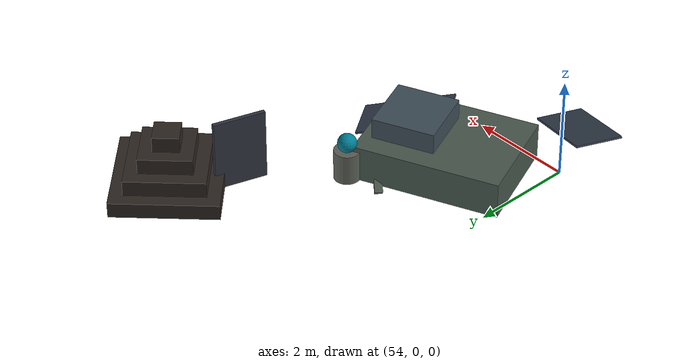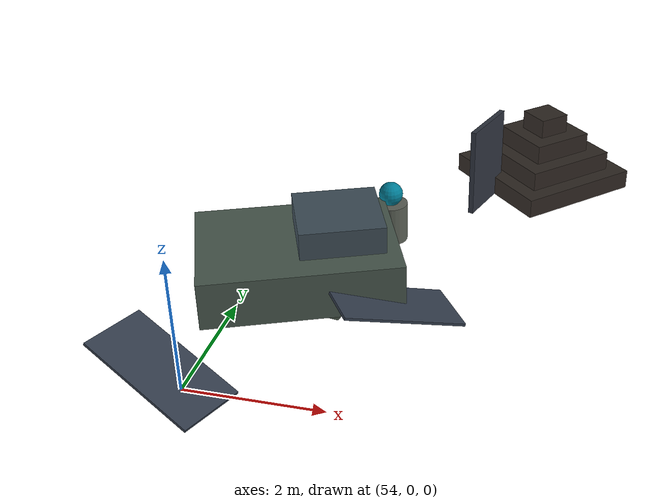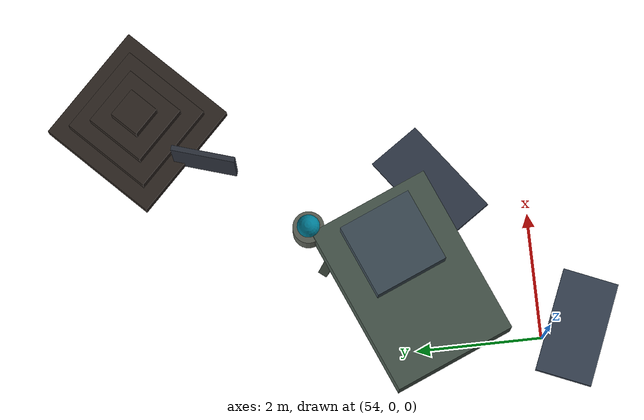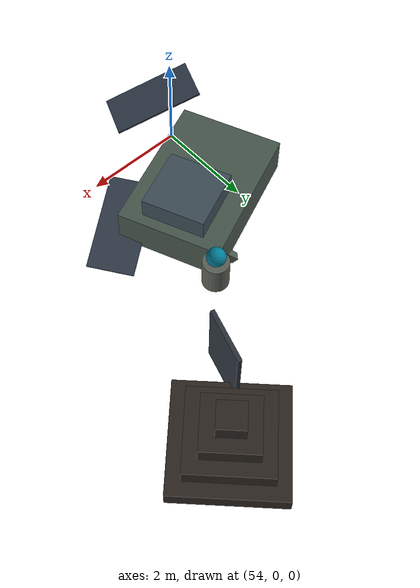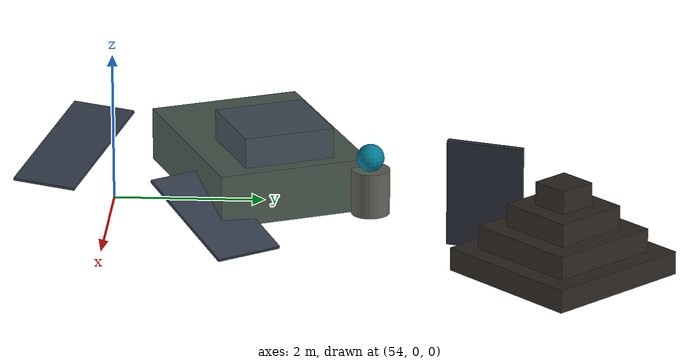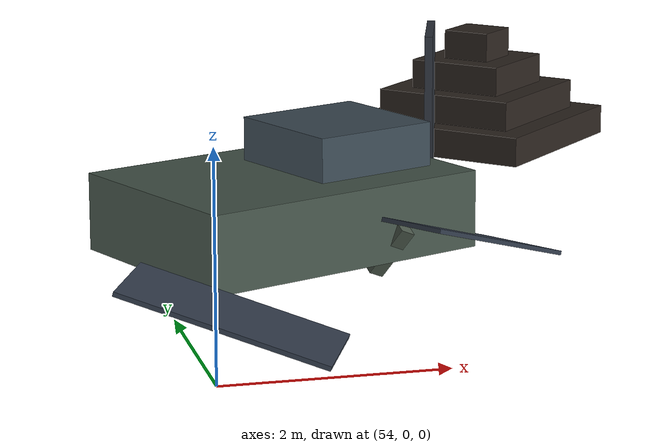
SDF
<sdf version="1.8">
 <world name="lava_tube">
  <model name="ancient_lander">
   <static>true</static>
   <pose>55 2 0.6 0 0 0.4</pose>
   <link name="link">
    <collision name="body_col">
     <pose>0 0 0.35 0 0 0</pose>
     <geometry><box><size>2.8 2.0 0.7</size></box></geometry>
    </collision>
    <visual name="body_vis">
     <pose>0 0 0.35 0 0 0</pose>
     <geometry><box><size>2.8 2.0 0.7</size></box></geometry>
     <material>
      <ambient>0.22 0.28 0.24 1</ambient>
      <diffuse>0.28 0.34 0.30 1</diffuse>
      <specular>0.05 0.05 0.05 1</specular>
     </material>
    </visual>
    <collision name="dome_col">
     <pose>0.6 0 0.85 0 0 0</pose>
     <geometry><box><size>1.2 1.2 0.5</size></box></geometry>
    </collision>
    <visual name="dome_vis">
     <pose>0.6 0 0.85 0 0 0</pose>
     <geometry><box><size>1.2 1.2 0.5</size></box></geometry>
     <material>
      <ambient>0.18 0.22 0.26 1</ambient>
      <diffuse>0.24 0.30 0.34 1</diffuse>
      <specular>0.05 0.05 0.05 1</specular>
     </material>
    </visual>
    <collision name="leg1_col">
     <pose>1.0 0.8 0.2 0.8 0 0.5</pose>
     <geometry><box><size>0.15 0.15 0.9</size></box></geometry>
    </collision>
    <visual name="leg1_vis">
     <pose>1.0 0.8 0.2 0.8 0 0.5</pose>
     <geometry><box><size>0.15 0.15 0.9</size></box></geometry>
     <material>
      <ambient>0.25 0.30 0.26 1</ambient>
      <diffuse>0.30 0.35 0.30 1</diffuse>
      <specular>0.05 0.05 0.05 1</specular>
     </material>
    </visual>
    <collision name="leg2_col">
     <pose>-1.1 -0.7 0.15 0.6 0 -0.3</pose>
     <geometry><box><size>0.15 0.15 0.7</size></box></geometry>
    </collision>
    <visual name="leg2_vis">
     <pose>-1.1 -0.7 0.15 0.6 0 -0.3</pose>
     <geometry><box><size>0.15 0.15 0.7</size></box></geometry>
     <material>
      <ambient>0.25 0.30 0.26 1</ambient>
      <diffuse>0.30 0.35 0.30 1</diffuse>
      <specular>0.05 0.05 0.05 1</specular>
     </material>
    </visual>
    <collision name="leg3_col">
     <pose>0.5 -0.9 0.1 0.5 0.4 0</pose>
     <geometry><box><size>0.15 0.15 0.5</size></box></geometry>
    </collision>
    <visual name="leg3_vis">
     <pose>0.5 -0.9 0.1 0.5 0.4 0</pose>
     <geometry><box><size>0.15 0.15 0.5</size></box></geometry>
     <material>
      <ambient>0.25 0.30 0.26 1</ambient>
      <diffuse>0.30 0.35 0.30 1</diffuse>
      <specular>0.05 0.05 0.05 1</specular>
     </material>
    </visual>
   </link>
  </model>
  <model name="solar_debris_0">
   <static>true</static>
   <pose>56.5 1.5 0.6 0 0.3 0.6</pose>
   <link name="link">
    <collision name="panel_col">
     <pose>0 0 0.15 0 0 0</pose>
     <geometry><box><size>1.8 0.9 0.04</size></box></geometry>
    </collision>
    <visual name="panel_vis">
     <pose>0 0 0.15 0 0 0</pose>
     <geometry><box><size>1.8 0.9 0.04</size></box></geometry>
     <material>
      <ambient>0.15 0.18 0.22 1</ambient>
      <diffuse>0.20 0.24 0.30 1</diffuse>
      <specular>0.05 0.05 0.05 1</specular>
     </material>
    </visual>
   </link>
  </model>
  <model name="solar_debris_1">
   <static>true</static>
   <pose>54 -0.5 0.6 0 0.3 -0.4</pose>
   <link name="link">
    <collision name="panel_col">
     <pose>0 0 0.15 0 0 0</pose>
     <geometry><box><size>1.8 0.9 0.04</size></box></geometry>
    </collision>
    <visual name="panel_vis">
     <pose>0 0 0.15 0 0 0</pose>
     <geometry><box><size>1.8 0.9 0.04</size></box></geometry>
     <material>
      <ambient>0.15 0.18 0.22 1</ambient>
      <diffuse>0.20 0.24 0.30 1</diffuse>
      <specular>0.05 0.05 0.05 1</specular>
     </material>
    </visual>
   </link>
  </model>
  <model name="ancient_beacon">
   <static>true</static>
   <pose>56 3.5 0.6 0 0 0</pose>
   <link name="link">
    <collision name="pedestal_col">
     <pose>0 0 0.3 0 0 0</pose>
     <geometry><cylinder><radius>0.25</radius><length>0.6</length></cylinder></geometry>
    </collision>
    <visual name="pedestal_vis">
     <pose>0 0 0.3 0 0 0</pose>
     <geometry><cylinder><radius>0.25</radius><length>0.6</length></cylinder></geometry>
     <material>
      <ambient>0.30 0.32 0.28 1</ambient>
      <diffuse>0.36 0.38 0.34 1</diffuse>
      <specular>0.05 0.05 0.05 1</specular>
     </material>
    </visual>
    <collision name="orb_col">
     <pose>0 0 0.75 0 0 0</pose>
     <geometry><sphere><radius>0.18</radius></sphere></geometry>
    </collision>
    <visual name="orb_vis">
     <pose>0 0 0.75 0 0 0</pose>
     <geometry><sphere><radius>0.18</radius></sphere></geometry>
     <material>
      <ambient>0.0 0.3 0.4 1</ambient>
      <diffuse>0.0 0.5 0.6 1</diffuse>
      <specular>0.05 0.05 0.05 1</specular>
      <emissive>0.0 0.8 1.0 1</emissive>
     </material>
    </visual>
   </link>
  </model>
  <model name="ancient_plaque">
   <static>true</static>
   <pose>57.2 5 0.6 0 0 -0.3</pose>
   <link name="link">
    <collision name="slab_col">
     <pose>0 0 0.7 0 0 0</pose>
     <geometry><box><size>0.08 1.0 1.4</size></box></geometry>
    </collision>
    <visual name="slab_vis">
     <pose>0 0 0.7 0 0 0</pose>
     <geometry><box><size>0.08 1.0 1.4</size></box></geometry>
     <material>
      <ambient>0.12 0.14 0.16 1</ambient>
      <diffuse>0.18 0.20 0.24 1</diffuse>
      <specular>0.05 0.05 0.05 1</specular>
      <emissive>0.02 0.08 0.12 1</emissive>
     </material>
    </visual>
   </link>
  </model>
  <model name="mystery_pyramid">
   <static>true</static>
   <pose>58 6 0.6 0 0 0.785</pose>
   <link name="link">
    <collision name="t0_col">
     <pose>0 0 0.15 0 0 0</pose>
     <geometry><box><size>2.0 2.0 0.3</size></box></geometry>
    </collision>
    <visual name="t0_vis">
     <pose>0 0 0.15 0 0 0</pose>
     <geometry><box><size>2.0 2.0 0.3</size></box></geometry>
     <material>
      <ambient>0.14 0.12 0.10 1</ambient>
      <diffuse>0.18 0.15 0.13 1</diffuse>
      <specular>0.05 0.05 0.05 1</specular>
     </material>
    </visual>
    <collision name="t1_col">
     <pose>0 0 0.45 0 0 0</pose>
     <geometry><box><size>1.5 1.5 0.3</size></box></geometry>
    </collision>
    <visual name="t1_vis">
     <pose>0 0 0.45 0 0 0</pose>
     <geometry><box><size>1.5 1.5 0.3</size></box></geometry>
     <material>
      <ambient>0.14 0.12 0.10 1</ambient>
      <diffuse>0.18 0.15 0.13 1</diffuse>
      <specular>0.05 0.05 0.05 1</specular>
     </material>
    </visual>
    <collision name="t2_col">
     <pose>0 0 0.75 0 0 0</pose>
     <geometry><box><size>1.0 1.0 0.3</size></box></geometry>
    </collision>
    <visual name="t2_vis">
     <pose>0 0 0.75 0 0 0</pose>
     <geometry><box><size>1.0 1.0 0.3</size></box></geometry>
     <material>
      <ambient>0.14 0.12 0.10 1</ambient>
      <diffuse>0.18 0.15 0.13 1</diffuse>
      <specular>0.05 0.05 0.05 1</specular>
     </material>
    </visual>
    <collision name="t3_col">
     <pose>0 0 1.05 0 0 0</pose>
     <geometry><box><size>0.5 0.5 0.3</size></box></geometry>
    </collision>
    <visual name="t3_vis">
     <pose>0 0 1.05 0 0 0</pose>
     <geometry><box><size>0.5 0.5 0.3</size></box></geometry>
     <material>
      <ambient>0.14 0.12 0.10 1</ambient>
      <diffuse>0.18 0.15 0.13 1</diffuse>
      <specular>0.05 0.05 0.05 1</specular>
     </material>
    </visual>
   </link>
  </model>
 </world>
</sdf>
